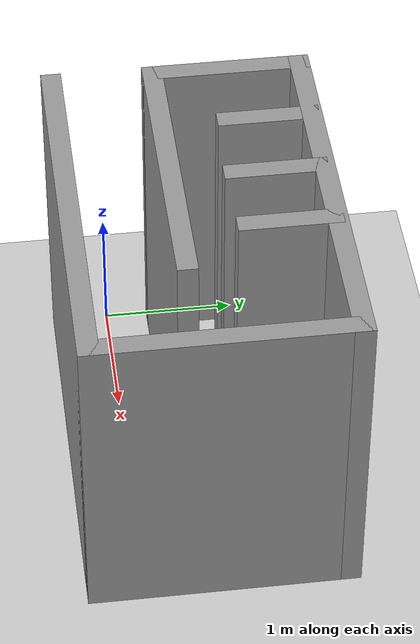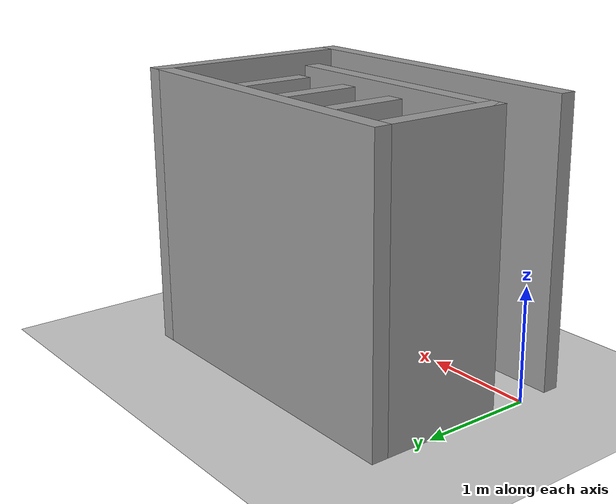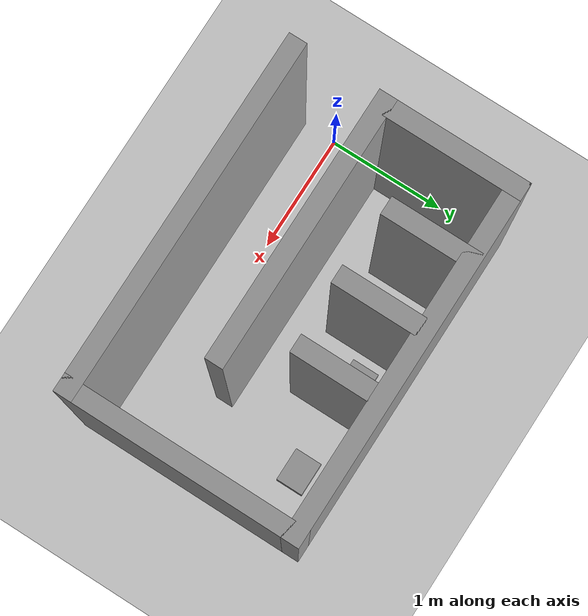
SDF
<sdf version="1.7">
 <world name="default">
  <light name="sun" type="directional">
   <pose>0 0 10 0 -0 0</pose>
   <diffuse>0.8 0.8 0.8 1</diffuse>
   <specular>0.2 0.2 0.2 1</specular>
   <attenuation>
    <range>1000</range>
    <constant>0.9</constant>
    <linear>0.01</linear>
    <quadratic>0.001</quadratic>
   </attenuation>
   <direction>-0.5 0.1 -0.9</direction>
   <spot><inner_angle>0</inner_angle><outer_angle>0</outer_angle><falloff>0</falloff></spot>
  </light>
  <model name="ground_plane">
   <static>1</static>
   <link name="link">
    <collision name="collision">
     <geometry><plane><normal>0 0 1</normal><size>100 100</size></plane></geometry>
     <surface><friction><ode><mu>100</mu><mu2>50</mu2></ode></friction></surface>
    </collision>
    <visual name="visual">
     <cast_shadows>0</cast_shadows>
     <geometry><plane><normal>0 0 1</normal><size>100 100</size></plane></geometry>
     <material>
      <script><uri>file://media/materials/scripts/gazebo.material</uri><name>Gazebo/Grey</name></script>
     </material>
    </visual>
   </link>
  </model>
  <gravity>0 0 -9.8</gravity>
  <magnetic_field>6e-06 2.3e-05 -4.2e-05</magnetic_field>
  <atmosphere type="adiabatic"/>
  <physics type="ode">
   <max_step_size>0.001</max_step_size>
   <real_time_factor>1</real_time_factor>
   <real_time_update_rate>1000</real_time_update_rate>
  </physics>
  <scene><ambient>0.4 0.4 0.4 1</ambient><background>0.7 0.7 0.7 1</background><shadows>1</shadows></scene>
  <audio><device>default</device></audio>
  <spherical_coordinates>
   <surface_model>EARTH_WGS84</surface_model>
   <latitude_deg>0</latitude_deg>
   <longitude_deg>0</longitude_deg>
   <elevation>0</elevation>
   <heading_deg>0</heading_deg>
  </spherical_coordinates>
  <model name="unit_box1">
   <pose>2.40174 1.20 0.068241 0 0 0</pose>
   <link name="link">
    <inertial>
     <mass>1</mass>
     <inertia>
      <ixx>0.166667</ixx>
      <ixy>0</ixy>
      <ixz>0</ixz>
      <iyy>0.166667</iyy>
      <iyz>0</iyz>
      <izz>0.166667</izz>
     </inertia>
    </inertial>
    <collision name="collision">
     <geometry><box><size>0.287659 0.233103 0.136483</size></box></geometry>
    </collision>
    <visual name="visual">
     <geometry><box><size>0.287659 0.233103 0.136483</size></box></geometry>
     <material>
      <script><name>Gazebo/Grey</name><uri>file://media/materials/scripts/gazebo.material</uri></script>
     </material>
    </visual>
   </link>
  </model>
  <model name="wrg_ros">
   <pose>1.496268 0.572663 0 0 -0 0</pose>
   <include><uri>model://wrg_ros</uri></include>
  </model>
  <model name="unit_box2">
   <pose>1.56294 1.20 0.06824 0 0 0</pose>
   <link name="link">
    <inertial>
     <mass>1</mass>
     <inertia>
      <ixx>0.166667</ixx>
      <ixy>0</ixy>
      <ixz>0</ixz>
      <iyy>0.166667</iyy>
      <iyz>0</iyz>
      <izz>0.166667</izz>
     </inertia>
    </inertial>
    <collision name="collision">
     <geometry><box><size>0.287659 0.233103 0.136483</size></box></geometry>
    </collision>
    <visual name="visual">
     <geometry><box><size>0.287659 0.233103 0.136483</size></box></geometry>
     <material>
      <script><name>Gazebo/Grey</name><uri>file://media/materials/scripts/gazebo.material</uri></script>
     </material>
    </visual>
   </link>
  </model>
  <model name="unit_box3">
   <pose>0.975662 1.20 0.068241 0 0 0</pose>
   <link name="link">
    <inertial>
     <mass>1</mass>
     <inertia>
      <ixx>0.166667</ixx>
      <ixy>0</ixy>
      <ixz>0</ixz>
      <iyy>0.166667</iyy>
      <iyz>0</iyz>
      <izz>0.166667</izz>
     </inertia>
    </inertial>
    <collision name="collision">
     <geometry><box><size>0.287659 0.233103 0.136483</size></box></geometry>
    </collision>
    <visual name="visual">
     <geometry><box><size>0.287659 0.233103 0.136483</size></box></geometry>
     <material>
      <script><name>Gazebo/Grey</name><uri>file://media/materials/scripts/gazebo.material</uri></script>
     </material>
    </visual>
   </link>
  </model>
  <model name="unit_box4">
   <pose>0.375002 1.20 0.049158 -0.00335 0 0 0</pose>
   <link name="link">
    <inertial>
     <mass>1</mass>
     <inertia>
      <ixx>0.166667</ixx>
      <ixy>0</ixy>
      <ixz>0</ixz>
      <iyy>0.166667</iyy>
      <iyz>0</iyz>
      <izz>0.166667</izz>
     </inertia>
    </inertial>
    <collision name="collision">
     <geometry><box><size>0.287659 0.233103 0.136483</size></box></geometry>
    </collision>
    <visual name="visual">
     <geometry><box><size>0.287659 0.233103 0.136483</size></box></geometry>
     <material>
      <script><name>Gazebo/Grey</name><uri>file://media/materials/scripts/gazebo.material</uri></script>
     </material>
    </visual>
   </link>
  </model>
  <model name="unit_cylinder1">
   <pose>1.56294 1.15399 0.205262 0 0 0</pose>
   <link name="link">
    <inertial>
     <mass>1</mass>
     <inertia><ixx>0.145833</ixx><ixy>0</ixy><ixz>0</ixz><iyy>0.145833</iyy><iyz>0</iyz><izz>0.125</izz></inertia>
    </inertial>
    <collision name="collision">
     <geometry><cylinder><radius>0.04</radius><length>0.16</length></cylinder></geometry>
    </collision>
    <visual name="visual">
     <geometry><cylinder><radius>0.04</radius><length>0.16</length></cylinder></geometry>
     <material>
      <script><name>Gazebo/Grey</name><uri>file://media/materials/scripts/gazebo.material</uri></script>
     </material>
    </visual>
   </link>
  </model>
  <model name="unit_cylinder2">
   <pose>0.975662 1.15399 0.205262 0 0 0</pose>
   <link name="link">
    <inertial>
     <mass>1</mass>
     <inertia><ixx>0.145833</ixx><ixy>0</ixy><ixz>0</ixz><iyy>0.145833</iyy><iyz>0</iyz><izz>0.125</izz></inertia>
    </inertial>
    <collision name="collision">
     <geometry><cylinder><radius>0.04</radius><length>0.16</length></cylinder></geometry>
    </collision>
    <visual name="visual">
     <geometry><cylinder><radius>0.04</radius><length>0.16</length></cylinder></geometry>
     <material>
      <script><name>Gazebo/Grey</name><uri>file://media/materials/scripts/gazebo.material</uri></script>
     </material>
    </visual>
   </link>
  </model>
  <model name="unit_cylinder3">
   <pose>0.376092 1.15399 0.205262 0 0 0</pose>
   <link name="link">
    <inertial>
     <mass>1</mass>
     <inertia><ixx>0.145833</ixx><ixy>0</ixy><ixz>0</ixz><iyy>0.145833</iyy><iyz>0</iyz><izz>0.125</izz></inertia>
    </inertial>
    <collision name="collision">
     <geometry><cylinder><radius>0.04</radius><length>0.16</length></cylinder></geometry>
    </collision>
    <visual name="visual">
     <geometry><cylinder><radius>0.04</radius><length>0.16</length></cylinder></geometry>
     <material>
      <script><name>Gazebo/Grey</name><uri>file://media/materials/scripts/gazebo.material</uri></script>
     </material>
    </visual>
   </link>
  </model>
 </world>
</sdf>

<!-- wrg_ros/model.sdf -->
<sdf version='1.7'>
  <model name='wrg_ros'>
    <pose>0 0 0 0 -0 0</pose>
    <link name='Wall_12'>
      <collision name='Wall_12_Collision'>
        <geometry>
          <box>
            <size>3 0.15 2.5</size>
          </box>
        </geometry>
        <pose>0 0 1.25 0 -0 0</pose>
      </collision>
      <visual name='Wall_12_Visual'>
        <pose>0 0 1.25 0 -0 0</pose>
        <geometry>
          <box>
            <size>3 0.15 2.5</size>
          </box>
        </geometry>
        <material>
          <script>
            <uri>file://media/materials/scripts/gazebo.material</uri>
            <name>Gazebo/Grey</name>
          </script>
          <ambient>1 1 1 1</ambient>
        </material>
        <meta>
          <layer>0</layer>
        </meta>
      </visual>
      <pose>-0 -0.925 0 0 -0 0</pose>
    </link>
    <link name='Wall_13'>
      <collision name='Wall_13_Collision'>
        <geometry>
          <box>
            <size>2 0.15 2.5</size>
          </box>
        </geometry>
        <pose>0 0 1.25 0 -0 0</pose>
      </collision>
      <visual name='Wall_13_Visual'>
        <pose>0 0 1.25 0 -0 0</pose>
        <geometry>
          <box>
            <size>2 0.15 2.5</size>
          </box>
        </geometry>
        <material>
          <script>
            <uri>file://media/materials/scripts/gazebo.material</uri>
            <name>Gazebo/Grey</name>
          </script>
          <ambient>1 1 1 1</ambient>
        </material>
        <meta>
          <layer>0</layer>
        </meta>
      </visual>
      <pose>1.425 0 0 0 -0 1.5708</pose>
    </link>
    <link name='Wall_17'>
      <collision name='Wall_17_Collision'>
        <geometry>
          <box>
            <size>3 0.15 2.5</size>
          </box>
        </geometry>
        <pose>0 0 1.25 0 -0 0</pose>
      </collision>
      <visual name='Wall_17_Visual'>
        <pose>0 0 1.25 0 -0 0</pose>
        <geometry>
          <box>
            <size>3 0.15 2.5</size>
          </box>
        </geometry>
        <material>
          <script>
            <uri>file://media/materials/scripts/gazebo.material</uri>
            <name>Gazebo/Grey</name>
          </script>
          <ambient>1 1 1 1</ambient>
        </material>
        <meta>
          <layer>0</layer>
        </meta>
      </visual>
      <pose>-0 0.925 0 0 -0 3.14159</pose>
    </link>
    <link name='Wall_18'>
      <collision name='Wall_18_Collision'>
        <geometry>
          <box>
            <size>1.25 0.15 2.5</size>
          </box>
        </geometry>
        <pose>0 0 1.25 0 -0 0</pose>
      </collision>
      <visual name='Wall_18_Visual'>
        <pose>0 0 1.25 0 -0 0</pose>
        <geometry>
          <box>
            <size>1.25 0.15 2.5</size>
          </box>
        </geometry>
        <material>
          <script>
            <uri>file://media/materials/scripts/gazebo.material</uri>
            <name>Gazebo/Grey</name>
          </script>
          <ambient>1 1 1 1</ambient>
        </material>
        <meta>
          <layer>0</layer>
        </meta>
      </visual>
      <pose>-1.425 0.375 0 0 -0 -1.5708</pose>
    </link>
    <link name='Wall_19'>
      <collision name='Wall_19_Collision'>
        <geometry>
          <box>
            <size>2.25 0.15 2.5</size>
          </box>
        </geometry>
        <pose>0 0 1.25 0 -0 0</pose>
      </collision>
      <visual name='Wall_19_Visual'>
        <pose>0 0 1.25 0 -0 0</pose>
        <geometry>
          <box>
            <size>2.25 0.15 2.5</size>
          </box>
        </geometry>
        <material>
          <script>
            <uri>file://media/materials/scripts/gazebo.material</uri>
            <name>Gazebo/Grey</name>
          </script>
          <ambient>1 1 1 1</ambient>
        </material>
        <meta>
          <layer>0</layer>
        </meta>
      </visual>
      <pose>-0.375 -0.175 0 0 -0 0</pose>
    </link>
    <link name='Wall_21'>
      <collision name='Wall_21_Collision'>
        <geometry>
          <box>
            <size>0.75 0.15 2.5</size>
          </box>
        </geometry>
        <pose>0 0 1.25 0 -0 0</pose>
      </collision>
      <visual name='Wall_21_Visual'>
        <pose>0 0 1.25 0 -0 0</pose>
        <geometry>
          <box>
            <size>0.75 0.15 2.5</size>
          </box>
        </geometry>
        <material>
          <script>
            <uri>file://media/materials/scripts/gazebo.material</uri>
            <name>Gazebo/Grey</name>
          </script>
          <ambient>1 1 1 1</ambient>
        </material>
        <meta>
          <layer>0</layer>
        </meta>
      </visual>
      <pose>-0.825 0.605 0 0 -0 -1.5708</pose>
    </link>
    <link name='Wall_23'>
      <collision name='Wall_23_Collision'>
        <geometry>
          <box>
            <size>0.75 0.15 2.5</size>
          </box>
        </geometry>
        <pose>0 0 1.25 0 -0 0</pose>
      </collision>
      <visual name='Wall_23_Visual'>
        <pose>0 0 1.25 0 -0 0</pose>
        <geometry>
          <box>
            <size>0.75 0.15 2.5</size>
          </box>
        </geometry>
        <material>
          <script>
            <uri>file://media/materials/scripts/gazebo.material</uri>
            <name>Gazebo/Grey</name>
          </script>
          <ambient>1 1 1 1</ambient>
        </material>
        <meta>
          <layer>0</layer>
        </meta>
      </visual>
      <pose>-0.235 0.575 0 0 -0 -1.5708</pose>
    </link>
    <link name='Wall_25'>
      <collision name='Wall_25_Collision'>
        <geometry>
          <box>
            <size>0.75 0.15 2.5</size>
          </box>
        </geometry>
        <pose>0 0 1.25 0 -0 0</pose>
      </collision>
      <visual name='Wall_25_Visual'>
        <pose>0 0 1.25 0 -0 0</pose>
        <geometry>
          <box>
            <size>0.75 0.15 2.5</size>
          </box>
        </geometry>
        <material>
          <script>
            <uri>file://media/materials/scripts/gazebo.material</uri>
            <name>Gazebo/Grey</name>
          </script>
          <ambient>1 1 1 1</ambient>
        </material>
        <meta>
          <layer>0</layer>
        </meta>
      </visual>
      <pose>0.325 0.595 0 0 -0 -1.5708</pose>
    </link>
    <static>1</static>
  </model>
</sdf>
